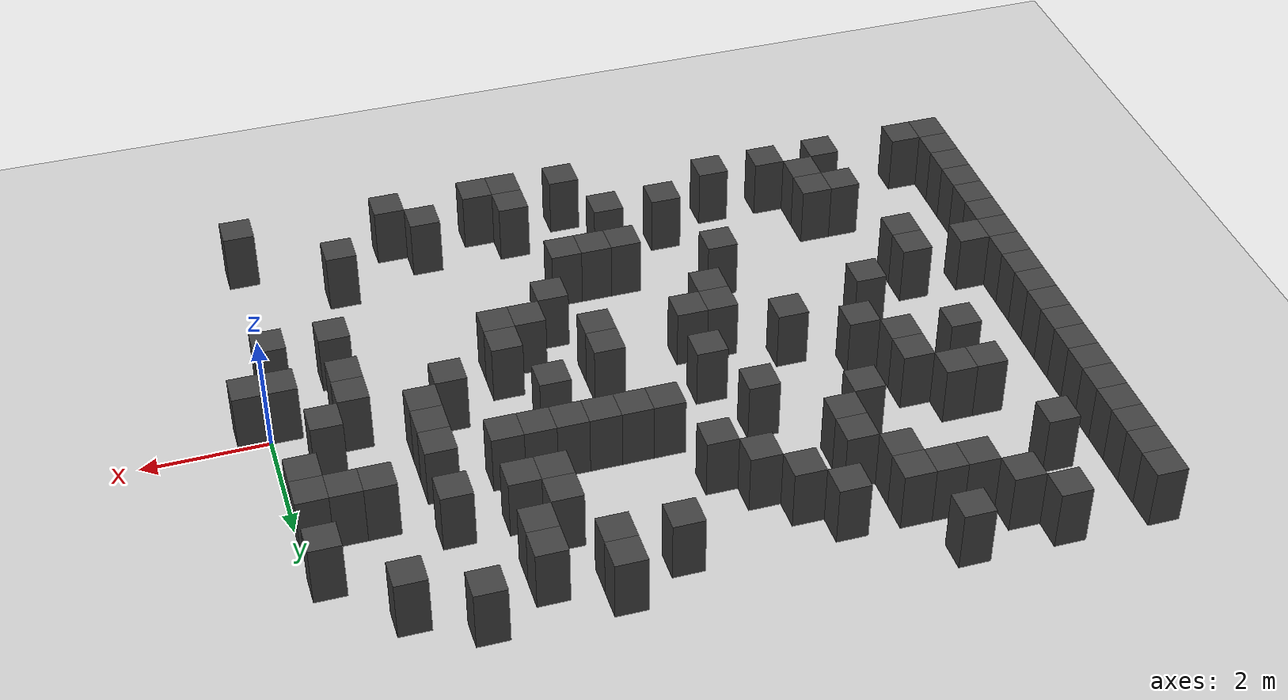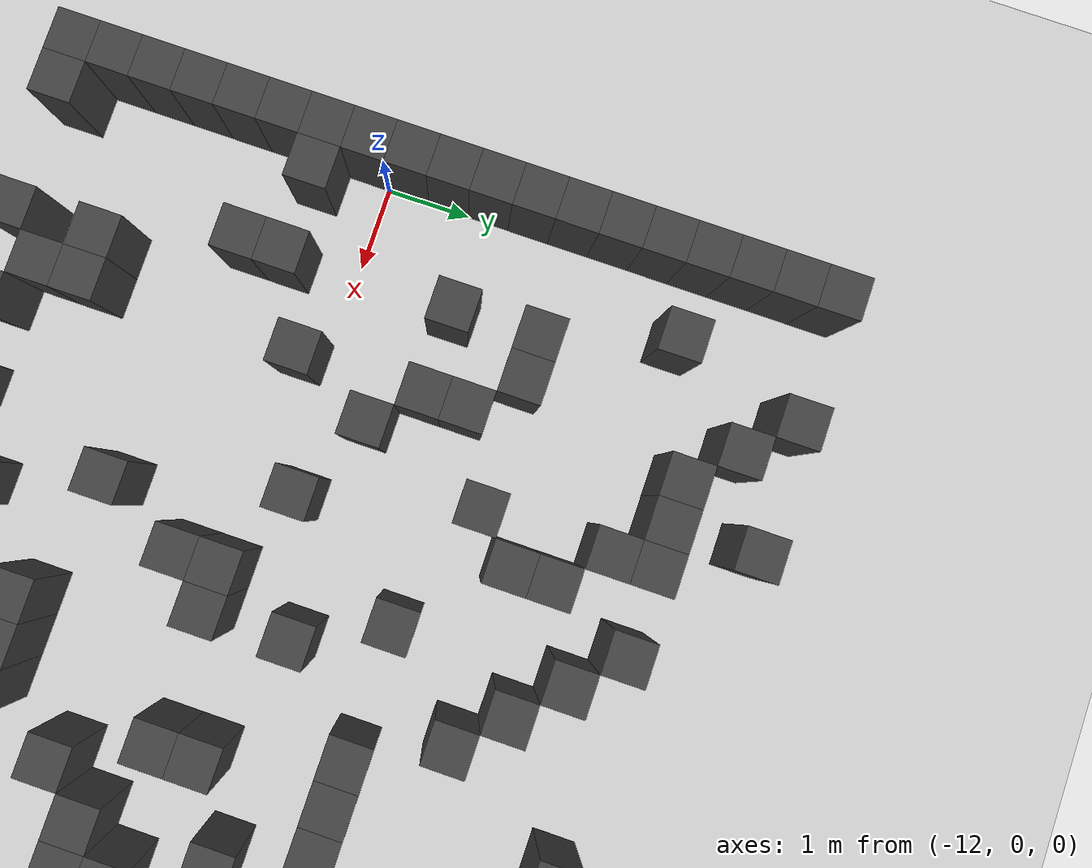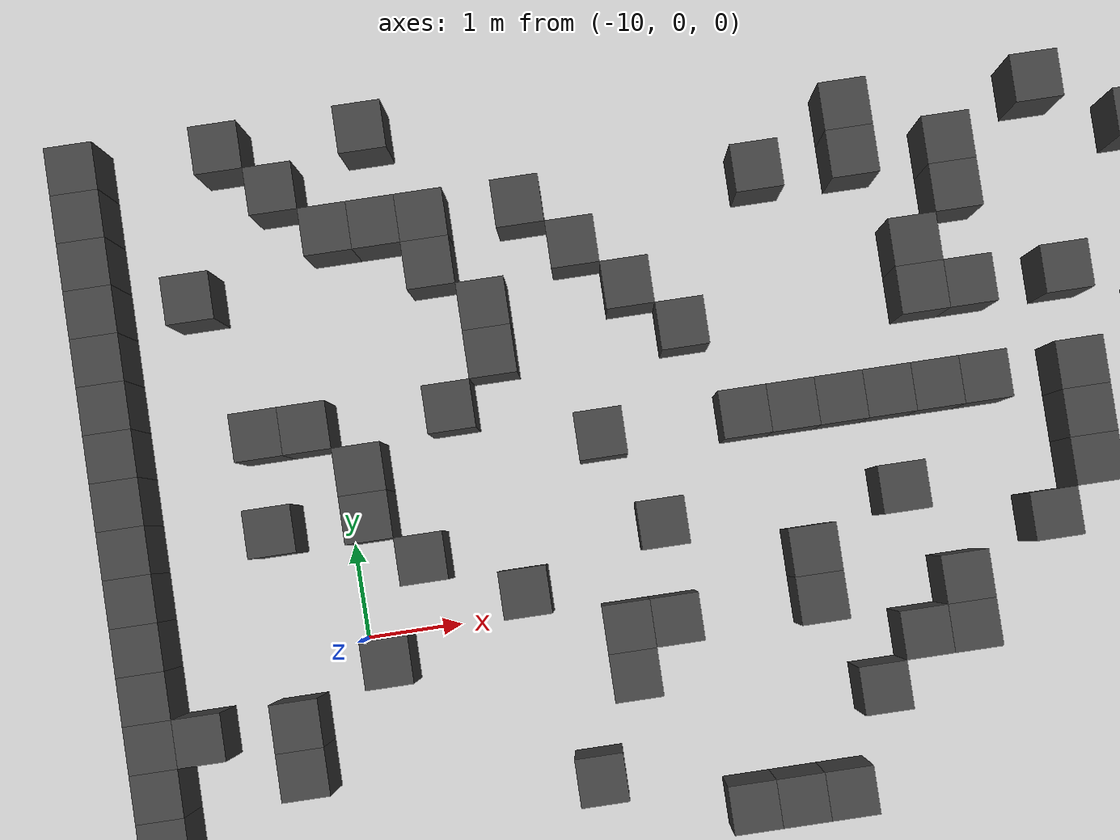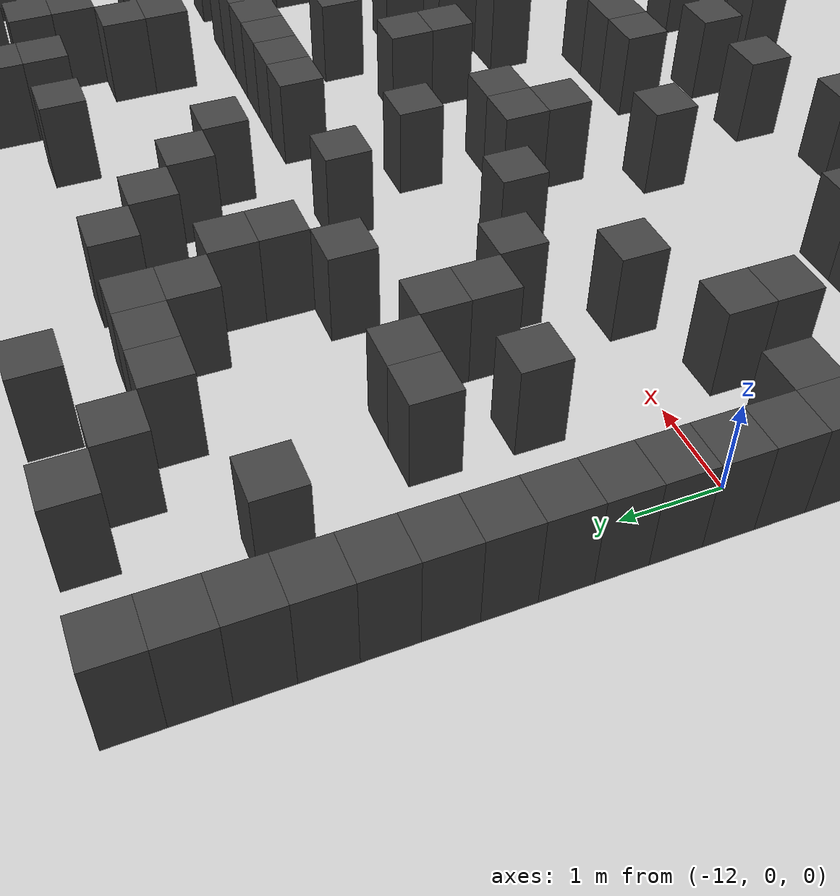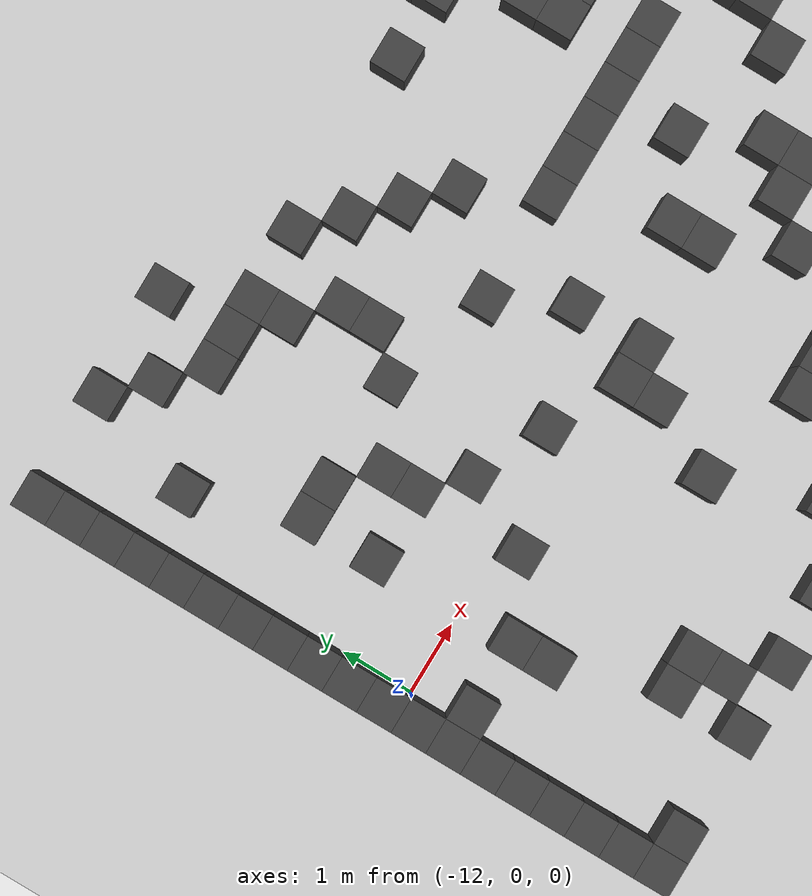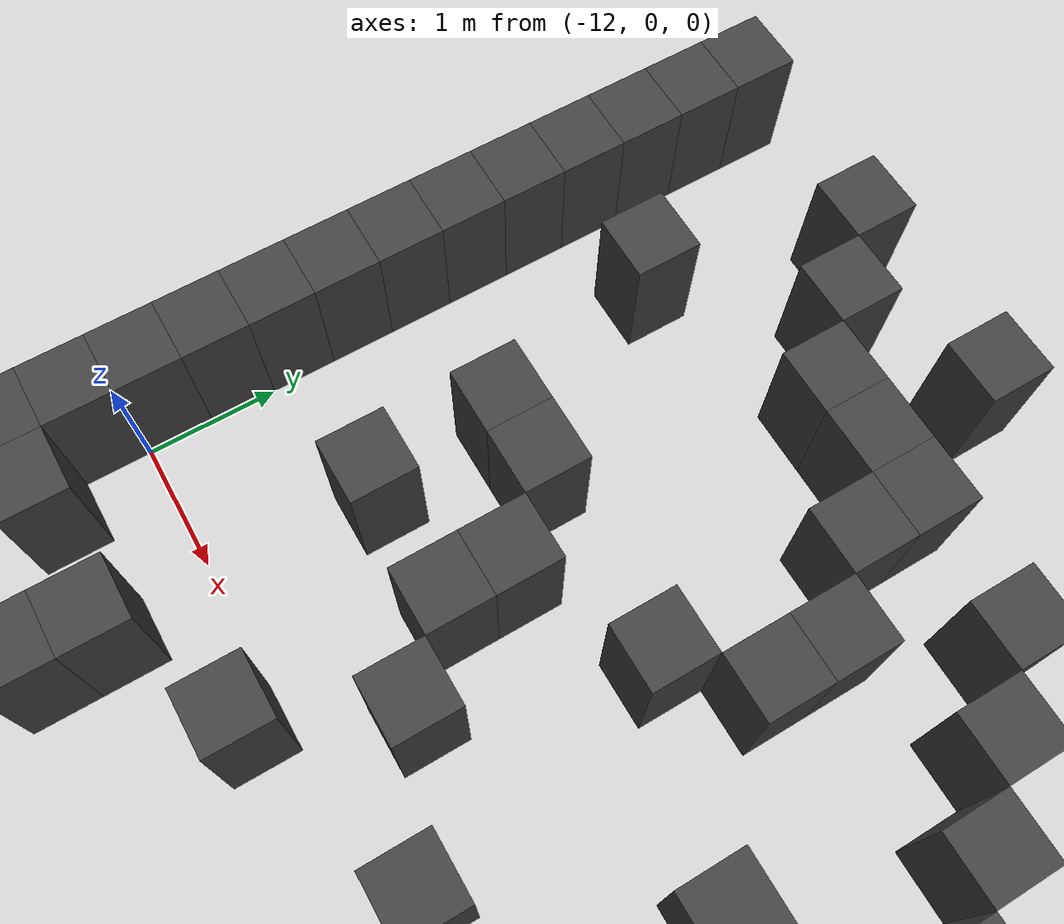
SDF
<sdf version="1.7">
 <world name="map_4225">
  <model name="ground_plane">
   <static>true</static>
   <link name="link">
    <collision name="collision">
     <geometry><plane><normal>0 0 1</normal><size>200 200</size></plane></geometry>
    </collision>
    <visual name="visual">
     <geometry><plane><normal>0 0 1</normal><size>200 200</size></plane></geometry>
     <material><ambient>0.8 0.8 0.8 1</ambient><diffuse>0.8 0.8 0.8 1</diffuse></material>
    </visual>
   </link>
  </model>
  <model name="maze_environment">
   <static>true</static>
   <link name="wall_200">
    <pose>-12.250 5.250 0.500 0 0 0</pose>
    <collision name="col"><geometry><box><size>0.5 0.5 1.0</size></box></geometry></collision>
    <visual name="vis">
     <geometry><box><size>0.5 0.5 1.0</size></box></geometry>
     <material><ambient>0.15 0.15 0.15 1</ambient><diffuse>0.25 0.25 0.25 1</diffuse></material>
    </visual>
   </link>
   <link name="wall_201">
    <pose>-10.750 5.250 0.500 0 0 0</pose>
    <collision name="col"><geometry><box><size>0.5 0.5 1.0</size></box></geometry></collision>
    <visual name="vis">
     <geometry><box><size>0.5 0.5 1.0</size></box></geometry>
     <material><ambient>0.15 0.15 0.15 1</ambient><diffuse>0.25 0.25 0.25 1</diffuse></material>
    </visual>
   </link>
   <link name="wall_202">
    <pose>-9.250 5.250 0.500 0 0 0</pose>
    <collision name="col"><geometry><box><size>0.5 0.5 1.0</size></box></geometry></collision>
    <visual name="vis">
     <geometry><box><size>0.5 0.5 1.0</size></box></geometry>
     <material><ambient>0.15 0.15 0.15 1</ambient><diffuse>0.25 0.25 0.25 1</diffuse></material>
    </visual>
   </link>
   <link name="wall_215">
    <pose>-12.250 4.750 0.500 0 0 0</pose>
    <collision name="col"><geometry><box><size>0.5 0.5 1.0</size></box></geometry></collision>
    <visual name="vis">
     <geometry><box><size>0.5 0.5 1.0</size></box></geometry>
     <material><ambient>0.15 0.15 0.15 1</ambient><diffuse>0.25 0.25 0.25 1</diffuse></material>
    </visual>
   </link>
   <link name="wall_216">
    <pose>-10.250 4.750 0.500 0 0 0</pose>
    <collision name="col"><geometry><box><size>0.5 0.5 1.0</size></box></geometry></collision>
    <visual name="vis">
     <geometry><box><size>0.5 0.5 1.0</size></box></geometry>
     <material><ambient>0.15 0.15 0.15 1</ambient><diffuse>0.25 0.25 0.25 1</diffuse></material>
    </visual>
   </link>
   <link name="wall_217">
    <pose>-4.250 4.750 0.500 0 0 0</pose>
    <collision name="col"><geometry><box><size>0.5 0.5 1.0</size></box></geometry></collision>
    <visual name="vis">
     <geometry><box><size>0.5 0.5 1.0</size></box></geometry>
     <material><ambient>0.15 0.15 0.15 1</ambient><diffuse>0.25 0.25 0.25 1</diffuse></material>
    </visual>
   </link>
   <link name="wall_218">
    <pose>-2.250 4.750 0.500 0 0 0</pose>
    <collision name="col"><geometry><box><size>0.5 0.5 1.0</size></box></geometry></collision>
    <visual name="vis">
     <geometry><box><size>0.5 0.5 1.0</size></box></geometry>
     <material><ambient>0.15 0.15 0.15 1</ambient><diffuse>0.25 0.25 0.25 1</diffuse></material>
    </visual>
   </link>
   <link name="wall_226">
    <pose>-12.250 4.250 0.500 0 0 0</pose>
    <collision name="col"><geometry><box><size>0.5 0.5 1.0</size></box></geometry></collision>
    <visual name="vis">
     <geometry><box><size>0.5 0.5 1.0</size></box></geometry>
     <material><ambient>0.15 0.15 0.15 1</ambient><diffuse>0.25 0.25 0.25 1</diffuse></material>
    </visual>
   </link>
   <link name="wall_227">
    <pose>-9.750 4.250 0.500 0 0 0</pose>
    <collision name="col"><geometry><box><size>0.5 0.5 1.0</size></box></geometry></collision>
    <visual name="vis">
     <geometry><box><size>0.5 0.5 1.0</size></box></geometry>
     <material><ambient>0.15 0.15 0.15 1</ambient><diffuse>0.25 0.25 0.25 1</diffuse></material>
    </visual>
   </link>
   <link name="wall_228">
    <pose>-9.250 4.250 0.500 0 0 0</pose>
    <collision name="col"><geometry><box><size>0.5 0.5 1.0</size></box></geometry></collision>
    <visual name="vis">
     <geometry><box><size>0.5 0.5 1.0</size></box></geometry>
     <material><ambient>0.15 0.15 0.15 1</ambient><diffuse>0.25 0.25 0.25 1</diffuse></material>
    </visual>
   </link>
   <link name="wall_229">
    <pose>-8.750 4.250 0.500 0 0 0</pose>
    <collision name="col"><geometry><box><size>0.5 0.5 1.0</size></box></geometry></collision>
    <visual name="vis">
     <geometry><box><size>0.5 0.5 1.0</size></box></geometry>
     <material><ambient>0.15 0.15 0.15 1</ambient><diffuse>0.25 0.25 0.25 1</diffuse></material>
    </visual>
   </link>
   <link name="wall_230">
    <pose>-7.750 4.250 0.500 0 0 0</pose>
    <collision name="col"><geometry><box><size>0.5 0.5 1.0</size></box></geometry></collision>
    <visual name="vis">
     <geometry><box><size>0.5 0.5 1.0</size></box></geometry>
     <material><ambient>0.15 0.15 0.15 1</ambient><diffuse>0.25 0.25 0.25 1</diffuse></material>
    </visual>
   </link>
   <link name="wall_231">
    <pose>-5.250 4.250 0.500 0 0 0</pose>
    <collision name="col"><geometry><box><size>0.5 0.5 1.0</size></box></geometry></collision>
    <visual name="vis">
     <geometry><box><size>0.5 0.5 1.0</size></box></geometry>
     <material><ambient>0.15 0.15 0.15 1</ambient><diffuse>0.25 0.25 0.25 1</diffuse></material>
    </visual>
   </link>
   <link name="wall_232">
    <pose>-4.250 4.250 0.500 0 0 0</pose>
    <collision name="col"><geometry><box><size>0.5 0.5 1.0</size></box></geometry></collision>
    <visual name="vis">
     <geometry><box><size>0.5 0.5 1.0</size></box></geometry>
     <material><ambient>0.15 0.15 0.15 1</ambient><diffuse>0.25 0.25 0.25 1</diffuse></material>
    </visual>
   </link>
   <link name="wall_233">
    <pose>-3.250 4.250 0.500 0 0 0</pose>
    <collision name="col"><geometry><box><size>0.5 0.5 1.0</size></box></geometry></collision>
    <visual name="vis">
     <geometry><box><size>0.5 0.5 1.0</size></box></geometry>
     <material><ambient>0.15 0.15 0.15 1</ambient><diffuse>0.25 0.25 0.25 1</diffuse></material>
    </visual>
   </link>
   <link name="wall_234">
    <pose>-1.250 4.250 0.500 0 0 0</pose>
    <collision name="col"><geometry><box><size>0.5 0.5 1.0</size></box></geometry></collision>
    <visual name="vis">
     <geometry><box><size>0.5 0.5 1.0</size></box></geometry>
     <material><ambient>0.15 0.15 0.15 1</ambient><diffuse>0.25 0.25 0.25 1</diffuse></material>
    </visual>
   </link>
   <link name="wall_239">
    <pose>-12.250 3.750 0.500 0 0 0</pose>
    <collision name="col"><geometry><box><size>0.5 0.5 1.0</size></box></geometry></collision>
    <visual name="vis">
     <geometry><box><size>0.5 0.5 1.0</size></box></geometry>
     <material><ambient>0.15 0.15 0.15 1</ambient><diffuse>0.25 0.25 0.25 1</diffuse></material>
    </visual>
   </link>
   <link name="wall_240">
    <pose>-11.250 3.750 0.500 0 0 0</pose>
    <collision name="col"><geometry><box><size>0.5 0.5 1.0</size></box></geometry></collision>
    <visual name="vis">
     <geometry><box><size>0.5 0.5 1.0</size></box></geometry>
     <material><ambient>0.15 0.15 0.15 1</ambient><diffuse>0.25 0.25 0.25 1</diffuse></material>
    </visual>
   </link>
   <link name="wall_241">
    <pose>-8.750 3.750 0.500 0 0 0</pose>
    <collision name="col"><geometry><box><size>0.5 0.5 1.0</size></box></geometry></collision>
    <visual name="vis">
     <geometry><box><size>0.5 0.5 1.0</size></box></geometry>
     <material><ambient>0.15 0.15 0.15 1</ambient><diffuse>0.25 0.25 0.25 1</diffuse></material>
    </visual>
   </link>
   <link name="wall_242">
    <pose>-7.250 3.750 0.500 0 0 0</pose>
    <collision name="col"><geometry><box><size>0.5 0.5 1.0</size></box></geometry></collision>
    <visual name="vis">
     <geometry><box><size>0.5 0.5 1.0</size></box></geometry>
     <material><ambient>0.15 0.15 0.15 1</ambient><diffuse>0.25 0.25 0.25 1</diffuse></material>
    </visual>
   </link>
   <link name="wall_243">
    <pose>-3.250 3.750 0.500 0 0 0</pose>
    <collision name="col"><geometry><box><size>0.5 0.5 1.0</size></box></geometry></collision>
    <visual name="vis">
     <geometry><box><size>0.5 0.5 1.0</size></box></geometry>
     <material><ambient>0.15 0.15 0.15 1</ambient><diffuse>0.25 0.25 0.25 1</diffuse></material>
    </visual>
   </link>
   <link name="wall_251">
    <pose>-12.250 3.250 0.500 0 0 0</pose>
    <collision name="col"><geometry><box><size>0.5 0.5 1.0</size></box></geometry></collision>
    <visual name="vis">
     <geometry><box><size>0.5 0.5 1.0</size></box></geometry>
     <material><ambient>0.15 0.15 0.15 1</ambient><diffuse>0.25 0.25 0.25 1</diffuse></material>
    </visual>
   </link>
   <link name="wall_252">
    <pose>-8.250 3.250 0.500 0 0 0</pose>
    <collision name="col"><geometry><box><size>0.5 0.5 1.0</size></box></geometry></collision>
    <visual name="vis">
     <geometry><box><size>0.5 0.5 1.0</size></box></geometry>
     <material><ambient>0.15 0.15 0.15 1</ambient><diffuse>0.25 0.25 0.25 1</diffuse></material>
    </visual>
   </link>
   <link name="wall_253">
    <pose>-6.750 3.250 0.500 0 0 0</pose>
    <collision name="col"><geometry><box><size>0.5 0.5 1.0</size></box></geometry></collision>
    <visual name="vis">
     <geometry><box><size>0.5 0.5 1.0</size></box></geometry>
     <material><ambient>0.15 0.15 0.15 1</ambient><diffuse>0.25 0.25 0.25 1</diffuse></material>
    </visual>
   </link>
   <link name="wall_254">
    <pose>-3.750 3.250 0.500 0 0 0</pose>
    <collision name="col"><geometry><box><size>0.5 0.5 1.0</size></box></geometry></collision>
    <visual name="vis">
     <geometry><box><size>0.5 0.5 1.0</size></box></geometry>
     <material><ambient>0.15 0.15 0.15 1</ambient><diffuse>0.25 0.25 0.25 1</diffuse></material>
    </visual>
   </link>
   <link name="wall_255">
    <pose>-0.250 3.250 0.500 0 0 0</pose>
    <collision name="col"><geometry><box><size>0.5 0.5 1.0</size></box></geometry></collision>
    <visual name="vis">
     <geometry><box><size>0.5 0.5 1.0</size></box></geometry>
     <material><ambient>0.15 0.15 0.15 1</ambient><diffuse>0.25 0.25 0.25 1</diffuse></material>
    </visual>
   </link>
   <link name="wall_261">
    <pose>-12.250 2.750 0.500 0 0 0</pose>
    <collision name="col"><geometry><box><size>0.5 0.5 1.0</size></box></geometry></collision>
    <visual name="vis">
     <geometry><box><size>0.5 0.5 1.0</size></box></geometry>
     <material><ambient>0.15 0.15 0.15 1</ambient><diffuse>0.25 0.25 0.25 1</diffuse></material>
    </visual>
   </link>
   <link name="wall_262">
    <pose>-8.250 2.750 0.500 0 0 0</pose>
    <collision name="col"><geometry><box><size>0.5 0.5 1.0</size></box></geometry></collision>
    <visual name="vis">
     <geometry><box><size>0.5 0.5 1.0</size></box></geometry>
     <material><ambient>0.15 0.15 0.15 1</ambient><diffuse>0.25 0.25 0.25 1</diffuse></material>
    </visual>
   </link>
   <link name="wall_263">
    <pose>-6.250 2.750 0.500 0 0 0</pose>
    <collision name="col"><geometry><box><size>0.5 0.5 1.0</size></box></geometry></collision>
    <visual name="vis">
     <geometry><box><size>0.5 0.5 1.0</size></box></geometry>
     <material><ambient>0.15 0.15 0.15 1</ambient><diffuse>0.25 0.25 0.25 1</diffuse></material>
    </visual>
   </link>
   <link name="wall_264">
    <pose>-3.750 2.750 0.500 0 0 0</pose>
    <collision name="col"><geometry><box><size>0.5 0.5 1.0</size></box></geometry></collision>
    <visual name="vis">
     <geometry><box><size>0.5 0.5 1.0</size></box></geometry>
     <material><ambient>0.15 0.15 0.15 1</ambient><diffuse>0.25 0.25 0.25 1</diffuse></material>
    </visual>
   </link>
   <link name="wall_265">
    <pose>-3.250 2.750 0.500 0 0 0</pose>
    <collision name="col"><geometry><box><size>0.5 0.5 1.0</size></box></geometry></collision>
    <visual name="vis">
     <geometry><box><size>0.5 0.5 1.0</size></box></geometry>
     <material><ambient>0.15 0.15 0.15 1</ambient><diffuse>0.25 0.25 0.25 1</diffuse></material>
    </visual>
   </link>
   <link name="wall_266">
    <pose>-2.250 2.750 0.500 0 0 0</pose>
    <collision name="col"><geometry><box><size>0.5 0.5 1.0</size></box></geometry></collision>
    <visual name="vis">
     <geometry><box><size>0.5 0.5 1.0</size></box></geometry>
     <material><ambient>0.15 0.15 0.15 1</ambient><diffuse>0.25 0.25 0.25 1</diffuse></material>
    </visual>
   </link>
   <link name="wall_273">
    <pose>-12.250 2.250 0.500 0 0 0</pose>
    <collision name="col"><geometry><box><size>0.5 0.5 1.0</size></box></geometry></collision>
    <visual name="vis">
     <geometry><box><size>0.5 0.5 1.0</size></box></geometry>
     <material><ambient>0.15 0.15 0.15 1</ambient><diffuse>0.25 0.25 0.25 1</diffuse></material>
    </visual>
   </link>
   <link name="wall_274">
    <pose>-10.750 2.250 0.500 0 0 0</pose>
    <collision name="col"><geometry><box><size>0.5 0.5 1.0</size></box></geometry></collision>
    <visual name="vis">
     <geometry><box><size>0.5 0.5 1.0</size></box></geometry>
     <material><ambient>0.15 0.15 0.15 1</ambient><diffuse>0.25 0.25 0.25 1</diffuse></material>
    </visual>
   </link>
   <link name="wall_275">
    <pose>-10.250 2.250 0.500 0 0 0</pose>
    <collision name="col"><geometry><box><size>0.5 0.5 1.0</size></box></geometry></collision>
    <visual name="vis">
     <geometry><box><size>0.5 0.5 1.0</size></box></geometry>
     <material><ambient>0.15 0.15 0.15 1</ambient><diffuse>0.25 0.25 0.25 1</diffuse></material>
    </visual>
   </link>
   <link name="wall_276">
    <pose>-8.750 2.250 0.500 0 0 0</pose>
    <collision name="col"><geometry><box><size>0.5 0.5 1.0</size></box></geometry></collision>
    <visual name="vis">
     <geometry><box><size>0.5 0.5 1.0</size></box></geometry>
     <material><ambient>0.15 0.15 0.15 1</ambient><diffuse>0.25 0.25 0.25 1</diffuse></material>
    </visual>
   </link>
   <link name="wall_277">
    <pose>-1.250 2.250 0.500 0 0 0</pose>
    <collision name="col"><geometry><box><size>0.5 0.5 1.0</size></box></geometry></collision>
    <visual name="vis">
     <geometry><box><size>0.5 0.5 1.0</size></box></geometry>
     <material><ambient>0.15 0.15 0.15 1</ambient><diffuse>0.25 0.25 0.25 1</diffuse></material>
    </visual>
   </link>
   <link name="wall_278">
    <pose>-0.750 2.250 0.500 0 0 0</pose>
    <collision name="col"><geometry><box><size>0.5 0.5 1.0</size></box></geometry></collision>
    <visual name="vis">
     <geometry><box><size>0.5 0.5 1.0</size></box></geometry>
     <material><ambient>0.15 0.15 0.15 1</ambient><diffuse>0.25 0.25 0.25 1</diffuse></material>
    </visual>
   </link>
   <link name="wall_279">
    <pose>-0.250 2.250 0.500 0 0 0</pose>
    <collision name="col"><geometry><box><size>0.5 0.5 1.0</size></box></geometry></collision>
    <visual name="vis">
     <geometry><box><size>0.5 0.5 1.0</size></box></geometry>
     <material><ambient>0.15 0.15 0.15 1</ambient><diffuse>0.25 0.25 0.25 1</diffuse></material>
    </visual>
   </link>
   <link name="wall_286">
    <pose>-12.250 1.750 0.500 0 0 0</pose>
    <collision name="col"><geometry><box><size>0.5 0.5 1.0</size></box></geometry></collision>
    <visual name="vis">
     <geometry><box><size>0.5 0.5 1.0</size></box></geometry>
     <material><ambient>0.15 0.15 0.15 1</ambient><diffuse>0.25 0.25 0.25 1</diffuse></material>
    </visual>
   </link>
   <link name="wall_287">
    <pose>-9.750 1.750 0.500 0 0 0</pose>
    <collision name="col"><geometry><box><size>0.5 0.5 1.0</size></box></geometry></collision>
    <visual name="vis">
     <geometry><box><size>0.5 0.5 1.0</size></box></geometry>
     <material><ambient>0.15 0.15 0.15 1</ambient><diffuse>0.25 0.25 0.25 1</diffuse></material>
    </visual>
   </link>
   <link name="wall_288">
    <pose>-7.250 1.750 0.500 0 0 0</pose>
    <collision name="col"><geometry><box><size>0.5 0.5 1.0</size></box></geometry></collision>
    <visual name="vis">
     <geometry><box><size>0.5 0.5 1.0</size></box></geometry>
     <material><ambient>0.15 0.15 0.15 1</ambient><diffuse>0.25 0.25 0.25 1</diffuse></material>
    </visual>
   </link>
   <link name="wall_289">
    <pose>-5.750 1.750 0.500 0 0 0</pose>
    <collision name="col"><geometry><box><size>0.5 0.5 1.0</size></box></geometry></collision>
    <visual name="vis">
     <geometry><box><size>0.5 0.5 1.0</size></box></geometry>
     <material><ambient>0.15 0.15 0.15 1</ambient><diffuse>0.25 0.25 0.25 1</diffuse></material>
    </visual>
   </link>
   <link name="wall_290">
    <pose>-5.250 1.750 0.500 0 0 0</pose>
    <collision name="col"><geometry><box><size>0.5 0.5 1.0</size></box></geometry></collision>
    <visual name="vis">
     <geometry><box><size>0.5 0.5 1.0</size></box></geometry>
     <material><ambient>0.15 0.15 0.15 1</ambient><diffuse>0.25 0.25 0.25 1</diffuse></material>
    </visual>
   </link>
   <link name="wall_291">
    <pose>-4.750 1.750 0.500 0 0 0</pose>
    <collision name="col"><geometry><box><size>0.5 0.5 1.0</size></box></geometry></collision>
    <visual name="vis">
     <geometry><box><size>0.5 0.5 1.0</size></box></geometry>
     <material><ambient>0.15 0.15 0.15 1</ambient><diffuse>0.25 0.25 0.25 1</diffuse></material>
    </visual>
   </link>
   <link name="wall_292">
    <pose>-4.250 1.750 0.500 0 0 0</pose>
    <collision name="col"><geometry><box><size>0.5 0.5 1.0</size></box></geometry></collision>
    <visual name="vis">
     <geometry><box><size>0.5 0.5 1.0</size></box></geometry>
     <material><ambient>0.15 0.15 0.15 1</ambient><diffuse>0.25 0.25 0.25 1</diffuse></material>
    </visual>
   </link>
   <link name="wall_293">
    <pose>-3.750 1.750 0.500 0 0 0</pose>
    <collision name="col"><geometry><box><size>0.5 0.5 1.0</size></box></geometry></collision>
    <visual name="vis">
     <geometry><box><size>0.5 0.5 1.0</size></box></geometry>
     <material><ambient>0.15 0.15 0.15 1</ambient><diffuse>0.25 0.25 0.25 1</diffuse></material>
    </visual>
   </link>
   <link name="wall_294">
    <pose>-3.250 1.750 0.500 0 0 0</pose>
    <collision name="col"><geometry><box><size>0.5 0.5 1.0</size></box></geometry></collision>
    <visual name="vis">
     <geometry><box><size>0.5 0.5 1.0</size></box></geometry>
     <material><ambient>0.15 0.15 0.15 1</ambient><diffuse>0.25 0.25 0.25 1</diffuse></material>
    </visual>
   </link>
   <link name="wall_295">
    <pose>-2.250 1.750 0.500 0 0 0</pose>
    <collision name="col"><geometry><box><size>0.5 0.5 1.0</size></box></geometry></collision>
    <visual name="vis">
     <geometry><box><size>0.5 0.5 1.0</size></box></geometry>
     <material><ambient>0.15 0.15 0.15 1</ambient><diffuse>0.25 0.25 0.25 1</diffuse></material>
    </visual>
   </link>
   <link name="wall_296">
    <pose>-0.250 1.750 0.500 0 0 0</pose>
    <collision name="col"><geometry><box><size>0.5 0.5 1.0</size></box></geometry></collision>
    <visual name="vis">
     <geometry><box><size>0.5 0.5 1.0</size></box></geometry>
     <material><ambient>0.15 0.15 0.15 1</ambient><diffuse>0.25 0.25 0.25 1</diffuse></material>
    </visual>
   </link>
   <link name="wall_301">
    <pose>-12.250 1.250 0.500 0 0 0</pose>
    <collision name="col"><geometry><box><size>0.5 0.5 1.0</size></box></geometry></collision>
    <visual name="vis">
     <geometry><box><size>0.5 0.5 1.0</size></box></geometry>
     <material><ambient>0.15 0.15 0.15 1</ambient><diffuse>0.25 0.25 0.25 1</diffuse></material>
    </visual>
   </link>
   <link name="wall_302">
    <pose>-10.750 1.250 0.500 0 0 0</pose>
    <collision name="col"><geometry><box><size>0.5 0.5 1.0</size></box></geometry></collision>
    <visual name="vis">
     <geometry><box><size>0.5 0.5 1.0</size></box></geometry>
     <material><ambient>0.15 0.15 0.15 1</ambient><diffuse>0.25 0.25 0.25 1</diffuse></material>
    </visual>
   </link>
   <link name="wall_303">
    <pose>-9.750 1.250 0.500 0 0 0</pose>
    <collision name="col"><geometry><box><size>0.5 0.5 1.0</size></box></geometry></collision>
    <visual name="vis">
     <geometry><box><size>0.5 0.5 1.0</size></box></geometry>
     <material><ambient>0.15 0.15 0.15 1</ambient><diffuse>0.25 0.25 0.25 1</diffuse></material>
    </visual>
   </link>
   <link name="wall_304">
    <pose>-2.250 1.250 0.500 0 0 0</pose>
    <collision name="col"><geometry><box><size>0.5 0.5 1.0</size></box></geometry></collision>
    <visual name="vis">
     <geometry><box><size>0.5 0.5 1.0</size></box></geometry>
     <material><ambient>0.15 0.15 0.15 1</ambient><diffuse>0.25 0.25 0.25 1</diffuse></material>
    </visual>
   </link>
   <link name="wall_314">
    <pose>-12.250 0.750 0.500 0 0 0</pose>
    <collision name="col"><geometry><box><size>0.5 0.5 1.0</size></box></geometry></collision>
    <visual name="vis">
     <geometry><box><size>0.5 0.5 1.0</size></box></geometry>
     <material><ambient>0.15 0.15 0.15 1</ambient><diffuse>0.25 0.25 0.25 1</diffuse></material>
    </visual>
   </link>
   <link name="wall_315">
    <pose>-9.250 0.750 0.500 0 0 0</pose>
    <collision name="col"><geometry><box><size>0.5 0.5 1.0</size></box></geometry></collision>
    <visual name="vis">
     <geometry><box><size>0.5 0.5 1.0</size></box></geometry>
     <material><ambient>0.15 0.15 0.15 1</ambient><diffuse>0.25 0.25 0.25 1</diffuse></material>
    </visual>
   </link>
   <link name="wall_316">
    <pose>-6.750 0.750 0.500 0 0 0</pose>
    <collision name="col"><geometry><box><size>0.5 0.5 1.0</size></box></geometry></collision>
    <visual name="vis">
     <geometry><box><size>0.5 0.5 1.0</size></box></geometry>
     <material><ambient>0.15 0.15 0.15 1</ambient><diffuse>0.25 0.25 0.25 1</diffuse></material>
    </visual>
   </link>
   <link name="wall_317">
    <pose>-4.250 0.750 0.500 0 0 0</pose>
    <collision name="col"><geometry><box><size>0.5 0.5 1.0</size></box></geometry></collision>
    <visual name="vis">
     <geometry><box><size>0.5 0.5 1.0</size></box></geometry>
     <material><ambient>0.15 0.15 0.15 1</ambient><diffuse>0.25 0.25 0.25 1</diffuse></material>
    </visual>
   </link>
   <link name="wall_318">
    <pose>-2.250 0.750 0.500 0 0 0</pose>
    <collision name="col"><geometry><box><size>0.5 0.5 1.0</size></box></geometry></collision>
    <visual name="vis">
     <geometry><box><size>0.5 0.5 1.0</size></box></geometry>
     <material><ambient>0.15 0.15 0.15 1</ambient><diffuse>0.25 0.25 0.25 1</diffuse></material>
    </visual>
   </link>
   <link name="wall_319">
    <pose>-0.750 0.750 0.500 0 0 0</pose>
    <collision name="col"><geometry><box><size>0.5 0.5 1.0</size></box></geometry></collision>
    <visual name="vis">
     <geometry><box><size>0.5 0.5 1.0</size></box></geometry>
     <material><ambient>0.15 0.15 0.15 1</ambient><diffuse>0.25 0.25 0.25 1</diffuse></material>
    </visual>
   </link>
   <link name="wall_324">
    <pose>-12.250 0.250 0.500 0 0 0</pose>
    <collision name="col"><geometry><box><size>0.5 0.5 1.0</size></box></geometry></collision>
    <visual name="vis">
     <geometry><box><size>0.5 0.5 1.0</size></box></geometry>
     <material><ambient>0.15 0.15 0.15 1</ambient><diffuse>0.25 0.25 0.25 1</diffuse></material>
    </visual>
   </link>
   <link name="wall_325">
    <pose>-8.250 0.250 0.500 0 0 0</pose>
    <collision name="col"><geometry><box><size>0.5 0.5 1.0</size></box></geometry></collision>
    <visual name="vis">
     <geometry><box><size>0.5 0.5 1.0</size></box></geometry>
     <material><ambient>0.15 0.15 0.15 1</ambient><diffuse>0.25 0.25 0.25 1</diffuse></material>
    </visual>
   </link>
   <link name="wall_326">
    <pose>-5.250 0.250 0.500 0 0 0</pose>
    <collision name="col"><geometry><box><size>0.5 0.5 1.0</size></box></geometry></collision>
    <visual name="vis">
     <geometry><box><size>0.5 0.5 1.0</size></box></geometry>
     <material><ambient>0.15 0.15 0.15 1</ambient><diffuse>0.25 0.25 0.25 1</diffuse></material>
    </visual>
   </link>
   <link name="wall_327">
    <pose>-2.750 0.250 0.500 0 0 0</pose>
    <collision name="col"><geometry><box><size>0.5 0.5 1.0</size></box></geometry></collision>
    <visual name="vis">
     <geometry><box><size>0.5 0.5 1.0</size></box></geometry>
     <material><ambient>0.15 0.15 0.15 1</ambient><diffuse>0.25 0.25 0.25 1</diffuse></material>
    </visual>
   </link>
   <link name="wall_328">
    <pose>-1.250 0.250 0.500 0 0 0</pose>
    <collision name="col"><geometry><box><size>0.5 0.5 1.0</size></box></geometry></collision>
    <visual name="vis">
     <geometry><box><size>0.5 0.5 1.0</size></box></geometry>
     <material><ambient>0.15 0.15 0.15 1</ambient><diffuse>0.25 0.25 0.25 1</diffuse></material>
    </visual>
   </link>
   <link name="wall_333">
    <pose>-12.250 -0.250 0.500 0 0 0</pose>
    <collision name="col"><geometry><box><size>0.5 0.5 1.0</size></box></geometry></collision>
    <visual name="vis">
     <geometry><box><size>0.5 0.5 1.0</size></box></geometry>
     <material><ambient>0.15 0.15 0.15 1</ambient><diffuse>0.25 0.25 0.25 1</diffuse></material>
    </visual>
   </link>
   <link name="wall_334">
    <pose>-9.750 -0.250 0.500 0 0 0</pose>
    <collision name="col"><geometry><box><size>0.5 0.5 1.0</size></box></geometry></collision>
    <visual name="vis">
     <geometry><box><size>0.5 0.5 1.0</size></box></geometry>
     <material><ambient>0.15 0.15 0.15 1</ambient><diffuse>0.25 0.25 0.25 1</diffuse></material>
    </visual>
   </link>
   <link name="wall_335">
    <pose>-7.250 -0.250 0.500 0 0 0</pose>
    <collision name="col"><geometry><box><size>0.5 0.5 1.0</size></box></geometry></collision>
    <visual name="vis">
     <geometry><box><size>0.5 0.5 1.0</size></box></geometry>
     <material><ambient>0.15 0.15 0.15 1</ambient><diffuse>0.25 0.25 0.25 1</diffuse></material>
    </visual>
   </link>
   <link name="wall_336">
    <pose>-6.750 -0.250 0.500 0 0 0</pose>
    <collision name="col"><geometry><box><size>0.5 0.5 1.0</size></box></geometry></collision>
    <visual name="vis">
     <geometry><box><size>0.5 0.5 1.0</size></box></geometry>
     <material><ambient>0.15 0.15 0.15 1</ambient><diffuse>0.25 0.25 0.25 1</diffuse></material>
    </visual>
   </link>
   <link name="wall_337">
    <pose>-5.250 -0.250 0.500 0 0 0</pose>
    <collision name="col"><geometry><box><size>0.5 0.5 1.0</size></box></geometry></collision>
    <visual name="vis">
     <geometry><box><size>0.5 0.5 1.0</size></box></geometry>
     <material><ambient>0.15 0.15 0.15 1</ambient><diffuse>0.25 0.25 0.25 1</diffuse></material>
    </visual>
   </link>
   <link name="wall_338">
    <pose>-3.750 -0.250 0.500 0 0 0</pose>
    <collision name="col"><geometry><box><size>0.5 0.5 1.0</size></box></geometry></collision>
    <visual name="vis">
     <geometry><box><size>0.5 0.5 1.0</size></box></geometry>
     <material><ambient>0.15 0.15 0.15 1</ambient><diffuse>0.25 0.25 0.25 1</diffuse></material>
    </visual>
   </link>
   <link name="wall_339">
    <pose>-1.250 -0.250 0.500 0 0 0</pose>
    <collision name="col"><geometry><box><size>0.5 0.5 1.0</size></box></geometry></collision>
    <visual name="vis">
     <geometry><box><size>0.5 0.5 1.0</size></box></geometry>
     <material><ambient>0.15 0.15 0.15 1</ambient><diffuse>0.25 0.25 0.25 1</diffuse></material>
    </visual>
   </link>
   <link name="wall_340">
    <pose>-0.250 -0.250 0.500 0 0 0</pose>
    <collision name="col"><geometry><box><size>0.5 0.5 1.0</size></box></geometry></collision>
    <visual name="vis">
     <geometry><box><size>0.5 0.5 1.0</size></box></geometry>
     <material><ambient>0.15 0.15 0.15 1</ambient><diffuse>0.25 0.25 0.25 1</diffuse></material>
    </visual>
   </link>
   <link name="wall_341">
    <pose>0.250 -0.250 0.500 0 0 0</pose>
    <collision name="col"><geometry><box><size>0.5 0.5 1.0</size></box></geometry></collision>
    <visual name="vis">
     <geometry><box><size>0.5 0.5 1.0</size></box></geometry>
     <material><ambient>0.15 0.15 0.15 1</ambient><diffuse>0.25 0.25 0.25 1</diffuse></material>
    </visual>
   </link>
   <link name="wall_347">
    <pose>-12.250 -0.750 0.500 0 0 0</pose>
    <collision name="col"><geometry><box><size>0.5 0.5 1.0</size></box></geometry></collision>
    <visual name="vis">
     <geometry><box><size>0.5 0.5 1.0</size></box></geometry>
     <material><ambient>0.15 0.15 0.15 1</ambient><diffuse>0.25 0.25 0.25 1</diffuse></material>
    </visual>
   </link>
   <link name="wall_348">
    <pose>-11.750 -0.750 0.500 0 0 0</pose>
    <collision name="col"><geometry><box><size>0.5 0.5 1.0</size></box></geometry></collision>
    <visual name="vis">
     <geometry><box><size>0.5 0.5 1.0</size></box></geometry>
     <material><ambient>0.15 0.15 0.15 1</ambient><diffuse>0.25 0.25 0.25 1</diffuse></material>
    </visual>
   </link>
   <link name="wall_349">
    <pose>-10.750 -0.750 0.500 0 0 0</pose>
    <collision name="col"><geometry><box><size>0.5 0.5 1.0</size></box></geometry></collision>
    <visual name="vis">
     <geometry><box><size>0.5 0.5 1.0</size></box></geometry>
     <material><ambient>0.15 0.15 0.15 1</ambient><diffuse>0.25 0.25 0.25 1</diffuse></material>
    </visual>
   </link>
   <link name="wall_350">
    <pose>-7.250 -0.750 0.500 0 0 0</pose>
    <collision name="col"><geometry><box><size>0.5 0.5 1.0</size></box></geometry></collision>
    <visual name="vis">
     <geometry><box><size>0.5 0.5 1.0</size></box></geometry>
     <material><ambient>0.15 0.15 0.15 1</ambient><diffuse>0.25 0.25 0.25 1</diffuse></material>
    </visual>
   </link>
   <link name="wall_351">
    <pose>-4.250 -0.750 0.500 0 0 0</pose>
    <collision name="col"><geometry><box><size>0.5 0.5 1.0</size></box></geometry></collision>
    <visual name="vis">
     <geometry><box><size>0.5 0.5 1.0</size></box></geometry>
     <material><ambient>0.15 0.15 0.15 1</ambient><diffuse>0.25 0.25 0.25 1</diffuse></material>
    </visual>
   </link>
   <link name="wall_352">
    <pose>-3.750 -0.750 0.500 0 0 0</pose>
    <collision name="col"><geometry><box><size>0.5 0.5 1.0</size></box></geometry></collision>
    <visual name="vis">
     <geometry><box><size>0.5 0.5 1.0</size></box></geometry>
     <material><ambient>0.15 0.15 0.15 1</ambient><diffuse>0.25 0.25 0.25 1</diffuse></material>
    </visual>
   </link>
   <link name="wall_360">
    <pose>-12.250 -1.250 0.500 0 0 0</pose>
    <collision name="col"><geometry><box><size>0.5 0.5 1.0</size></box></geometry></collision>
    <visual name="vis">
     <geometry><box><size>0.5 0.5 1.0</size></box></geometry>
     <material><ambient>0.15 0.15 0.15 1</ambient><diffuse>0.25 0.25 0.25 1</diffuse></material>
    </visual>
   </link>
   <link name="wall_361">
    <pose>-10.750 -1.250 0.500 0 0 0</pose>
    <collision name="col"><geometry><box><size>0.5 0.5 1.0</size></box></geometry></collision>
    <visual name="vis">
     <geometry><box><size>0.5 0.5 1.0</size></box></geometry>
     <material><ambient>0.15 0.15 0.15 1</ambient><diffuse>0.25 0.25 0.25 1</diffuse></material>
    </visual>
   </link>
   <link name="wall_362">
    <pose>-4.750 -1.250 0.500 0 0 0</pose>
    <collision name="col"><geometry><box><size>0.5 0.5 1.0</size></box></geometry></collision>
    <visual name="vis">
     <geometry><box><size>0.5 0.5 1.0</size></box></geometry>
     <material><ambient>0.15 0.15 0.15 1</ambient><diffuse>0.25 0.25 0.25 1</diffuse></material>
    </visual>
   </link>
   <link name="wall_363">
    <pose>-1.250 -1.250 0.500 0 0 0</pose>
    <collision name="col"><geometry><box><size>0.5 0.5 1.0</size></box></geometry></collision>
    <visual name="vis">
     <geometry><box><size>0.5 0.5 1.0</size></box></geometry>
     <material><ambient>0.15 0.15 0.15 1</ambient><diffuse>0.25 0.25 0.25 1</diffuse></material>
    </visual>
   </link>
   <link name="wall_364">
    <pose>-0.250 -1.250 0.500 0 0 0</pose>
    <collision name="col"><geometry><box><size>0.5 0.5 1.0</size></box></geometry></collision>
    <visual name="vis">
     <geometry><box><size>0.5 0.5 1.0</size></box></geometry>
     <material><ambient>0.15 0.15 0.15 1</ambient><diffuse>0.25 0.25 0.25 1</diffuse></material>
    </visual>
   </link>
   <link name="wall_371">
    <pose>-12.250 -1.750 0.500 0 0 0</pose>
    <collision name="col"><geometry><box><size>0.5 0.5 1.0</size></box></geometry></collision>
    <visual name="vis">
     <geometry><box><size>0.5 0.5 1.0</size></box></geometry>
     <material><ambient>0.15 0.15 0.15 1</ambient><diffuse>0.25 0.25 0.25 1</diffuse></material>
    </visual>
   </link>
   <link name="wall_372">
    <pose>-7.750 -1.750 0.500 0 0 0</pose>
    <collision name="col"><geometry><box><size>0.5 0.5 1.0</size></box></geometry></collision>
    <visual name="vis">
     <geometry><box><size>0.5 0.5 1.0</size></box></geometry>
     <material><ambient>0.15 0.15 0.15 1</ambient><diffuse>0.25 0.25 0.25 1</diffuse></material>
    </visual>
   </link>
   <link name="wall_379">
    <pose>-12.250 -2.250 0.500 0 0 0</pose>
    <collision name="col"><geometry><box><size>0.5 0.5 1.0</size></box></geometry></collision>
    <visual name="vis">
     <geometry><box><size>0.5 0.5 1.0</size></box></geometry>
     <material><ambient>0.15 0.15 0.15 1</ambient><diffuse>0.25 0.25 0.25 1</diffuse></material>
    </visual>
   </link>
   <link name="wall_380">
    <pose>-6.250 -2.250 0.500 0 0 0</pose>
    <collision name="col"><geometry><box><size>0.5 0.5 1.0</size></box></geometry></collision>
    <visual name="vis">
     <geometry><box><size>0.5 0.5 1.0</size></box></geometry>
     <material><ambient>0.15 0.15 0.15 1</ambient><diffuse>0.25 0.25 0.25 1</diffuse></material>
    </visual>
   </link>
   <link name="wall_381">
    <pose>-5.750 -2.250 0.500 0 0 0</pose>
    <collision name="col"><geometry><box><size>0.5 0.5 1.0</size></box></geometry></collision>
    <visual name="vis">
     <geometry><box><size>0.5 0.5 1.0</size></box></geometry>
     <material><ambient>0.15 0.15 0.15 1</ambient><diffuse>0.25 0.25 0.25 1</diffuse></material>
    </visual>
   </link>
   <link name="wall_382">
    <pose>-5.250 -2.250 0.500 0 0 0</pose>
    <collision name="col"><geometry><box><size>0.5 0.5 1.0</size></box></geometry></collision>
    <visual name="vis">
     <geometry><box><size>0.5 0.5 1.0</size></box></geometry>
     <material><ambient>0.15 0.15 0.15 1</ambient><diffuse>0.25 0.25 0.25 1</diffuse></material>
    </visual>
   </link>
   <link name="wall_390">
    <pose>-12.250 -2.750 0.500 0 0 0</pose>
    <collision name="col"><geometry><box><size>0.5 0.5 1.0</size></box></geometry></collision>
    <visual name="vis">
     <geometry><box><size>0.5 0.5 1.0</size></box></geometry>
     <material><ambient>0.15 0.15 0.15 1</ambient><diffuse>0.25 0.25 0.25 1</diffuse></material>
    </visual>
   </link>
   <link name="wall_391">
    <pose>-10.250 -2.750 0.500 0 0 0</pose>
    <collision name="col"><geometry><box><size>0.5 0.5 1.0</size></box></geometry></collision>
    <visual name="vis">
     <geometry><box><size>0.5 0.5 1.0</size></box></geometry>
     <material><ambient>0.15 0.15 0.15 1</ambient><diffuse>0.25 0.25 0.25 1</diffuse></material>
    </visual>
   </link>
   <link name="wall_392">
    <pose>-9.750 -2.750 0.500 0 0 0</pose>
    <collision name="col"><geometry><box><size>0.5 0.5 1.0</size></box></geometry></collision>
    <visual name="vis">
     <geometry><box><size>0.5 0.5 1.0</size></box></geometry>
     <material><ambient>0.15 0.15 0.15 1</ambient><diffuse>0.25 0.25 0.25 1</diffuse></material>
    </visual>
   </link>
   <link name="wall_397">
    <pose>-12.250 -3.250 0.500 0 0 0</pose>
    <collision name="col"><geometry><box><size>0.5 0.5 1.0</size></box></geometry></collision>
    <visual name="vis">
     <geometry><box><size>0.5 0.5 1.0</size></box></geometry>
     <material><ambient>0.15 0.15 0.15 1</ambient><diffuse>0.25 0.25 0.25 1</diffuse></material>
    </visual>
   </link>
   <link name="wall_398">
    <pose>-9.750 -3.250 0.500 0 0 0</pose>
    <collision name="col"><geometry><box><size>0.5 0.5 1.0</size></box></geometry></collision>
    <visual name="vis">
     <geometry><box><size>0.5 0.5 1.0</size></box></geometry>
     <material><ambient>0.15 0.15 0.15 1</ambient><diffuse>0.25 0.25 0.25 1</diffuse></material>
    </visual>
   </link>
   <link name="wall_399">
    <pose>-7.250 -3.250 0.500 0 0 0</pose>
    <collision name="col"><geometry><box><size>0.5 0.5 1.0</size></box></geometry></collision>
    <visual name="vis">
     <geometry><box><size>0.5 0.5 1.0</size></box></geometry>
     <material><ambient>0.15 0.15 0.15 1</ambient><diffuse>0.25 0.25 0.25 1</diffuse></material>
    </visual>
   </link>
   <link name="wall_400">
    <pose>-6.250 -3.250 0.500 0 0 0</pose>
    <collision name="col"><geometry><box><size>0.5 0.5 1.0</size></box></geometry></collision>
    <visual name="vis">
     <geometry><box><size>0.5 0.5 1.0</size></box></geometry>
     <material><ambient>0.15 0.15 0.15 1</ambient><diffuse>0.25 0.25 0.25 1</diffuse></material>
    </visual>
   </link>
   <link name="wall_401">
    <pose>-1.750 -3.250 0.500 0 0 0</pose>
    <collision name="col"><geometry><box><size>0.5 0.5 1.0</size></box></geometry></collision>
    <visual name="vis">
     <geometry><box><size>0.5 0.5 1.0</size></box></geometry>
     <material><ambient>0.15 0.15 0.15 1</ambient><diffuse>0.25 0.25 0.25 1</diffuse></material>
    </visual>
   </link>
   <link name="wall_408">
    <pose>-12.250 -3.750 0.500 0 0 0</pose>
    <collision name="col"><geometry><box><size>0.5 0.5 1.0</size></box></geometry></collision>
    <visual name="vis">
     <geometry><box><size>0.5 0.5 1.0</size></box></geometry>
     <material><ambient>0.15 0.15 0.15 1</ambient><diffuse>0.25 0.25 0.25 1</diffuse></material>
    </visual>
   </link>
   <link name="wall_409">
    <pose>-11.750 -3.750 0.500 0 0 0</pose>
    <collision name="col"><geometry><box><size>0.5 0.5 1.0</size></box></geometry></collision>
    <visual name="vis">
     <geometry><box><size>0.5 0.5 1.0</size></box></geometry>
     <material><ambient>0.15 0.15 0.15 1</ambient><diffuse>0.25 0.25 0.25 1</diffuse></material>
    </visual>
   </link>
   <link name="wall_410">
    <pose>-10.250 -3.750 0.500 0 0 0</pose>
    <collision name="col"><geometry><box><size>0.5 0.5 1.0</size></box></geometry></collision>
    <visual name="vis">
     <geometry><box><size>0.5 0.5 1.0</size></box></geometry>
     <material><ambient>0.15 0.15 0.15 1</ambient><diffuse>0.25 0.25 0.25 1</diffuse></material>
    </visual>
   </link>
   <link name="wall_411">
    <pose>-9.250 -3.750 0.500 0 0 0</pose>
    <collision name="col"><geometry><box><size>0.5 0.5 1.0</size></box></geometry></collision>
    <visual name="vis">
     <geometry><box><size>0.5 0.5 1.0</size></box></geometry>
     <material><ambient>0.15 0.15 0.15 1</ambient><diffuse>0.25 0.25 0.25 1</diffuse></material>
    </visual>
   </link>
   <link name="wall_412">
    <pose>-8.250 -3.750 0.500 0 0 0</pose>
    <collision name="col"><geometry><box><size>0.5 0.5 1.0</size></box></geometry></collision>
    <visual name="vis">
     <geometry><box><size>0.5 0.5 1.0</size></box></geometry>
     <material><ambient>0.15 0.15 0.15 1</ambient><diffuse>0.25 0.25 0.25 1</diffuse></material>
    </visual>
   </link>
   <link name="wall_413">
    <pose>-4.750 -3.750 0.500 0 0 0</pose>
    <collision name="col"><geometry><box><size>0.5 0.5 1.0</size></box></geometry></collision>
    <visual name="vis">
     <geometry><box><size>0.5 0.5 1.0</size></box></geometry>
     <material><ambient>0.15 0.15 0.15 1</ambient><diffuse>0.25 0.25 0.25 1</diffuse></material>
    </visual>
   </link>
   <link name="wall_414">
    <pose>-3.250 -3.750 0.500 0 0 0</pose>
    <collision name="col"><geometry><box><size>0.5 0.5 1.0</size></box></geometry></collision>
    <visual name="vis">
     <geometry><box><size>0.5 0.5 1.0</size></box></geometry>
     <material><ambient>0.15 0.15 0.15 1</ambient><diffuse>0.25 0.25 0.25 1</diffuse></material>
    </visual>
   </link>
   <link name="wall_424">
    <pose>-5.750 -4.250 0.500 0 0 0</pose>
    <collision name="col"><geometry><box><size>0.5 0.5 1.0</size></box></geometry></collision>
    <visual name="vis">
     <geometry><box><size>0.5 0.5 1.0</size></box></geometry>
     <material><ambient>0.15 0.15 0.15 1</ambient><diffuse>0.25 0.25 0.25 1</diffuse></material>
    </visual>
   </link>
   <link name="wall_425">
    <pose>-4.750 -4.250 0.500 0 0 0</pose>
    <collision name="col"><geometry><box><size>0.5 0.5 1.0</size></box></geometry></collision>
    <visual name="vis">
     <geometry><box><size>0.5 0.5 1.0</size></box></geometry>
     <material><ambient>0.15 0.15 0.15 1</ambient><diffuse>0.25 0.25 0.25 1</diffuse></material>
    </visual>
   </link>
   <link name="wall_426">
    <pose>-4.250 -4.250 0.500 0 0 0</pose>
    <collision name="col"><geometry><box><size>0.5 0.5 1.0</size></box></geometry></collision>
    <visual name="vis">
     <geometry><box><size>0.5 0.5 1.0</size></box></geometry>
     <material><ambient>0.15 0.15 0.15 1</ambient><diffuse>0.25 0.25 0.25 1</diffuse></material>
    </visual>
   </link>
   <link name="wall_427">
    <pose>-2.750 -4.250 0.500 0 0 0</pose>
    <collision name="col"><geometry><box><size>0.5 0.5 1.0</size></box></geometry></collision>
    <visual name="vis">
     <geometry><box><size>0.5 0.5 1.0</size></box></geometry>
     <material><ambient>0.15 0.15 0.15 1</ambient><diffuse>0.25 0.25 0.25 1</diffuse></material>
    </visual>
   </link>
   <link name="wall_428">
    <pose>-0.250 -4.250 0.500 0 0 0</pose>
    <collision name="col"><geometry><box><size>0.5 0.5 1.0</size></box></geometry></collision>
    <visual name="vis">
     <geometry><box><size>0.5 0.5 1.0</size></box></geometry>
     <material><ambient>0.15 0.15 0.15 1</ambient><diffuse>0.25 0.25 0.25 1</diffuse></material>
    </visual>
   </link>
  </model>
 </world>
</sdf>
